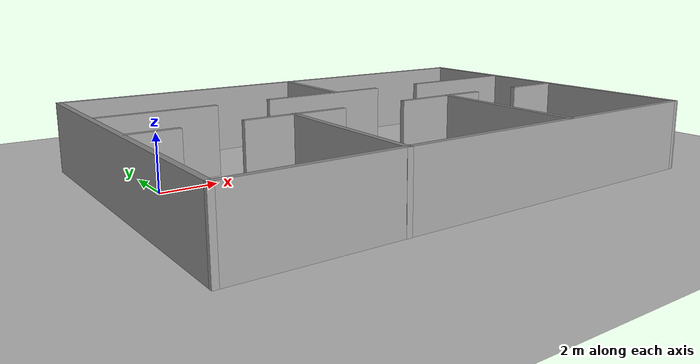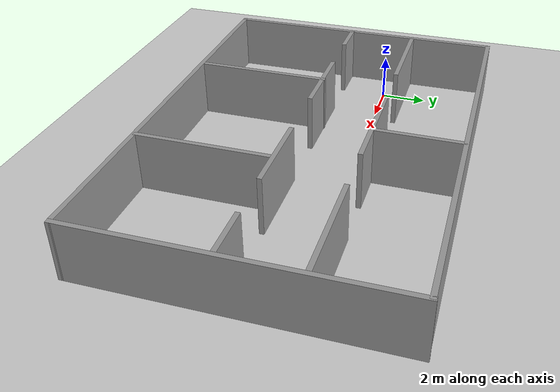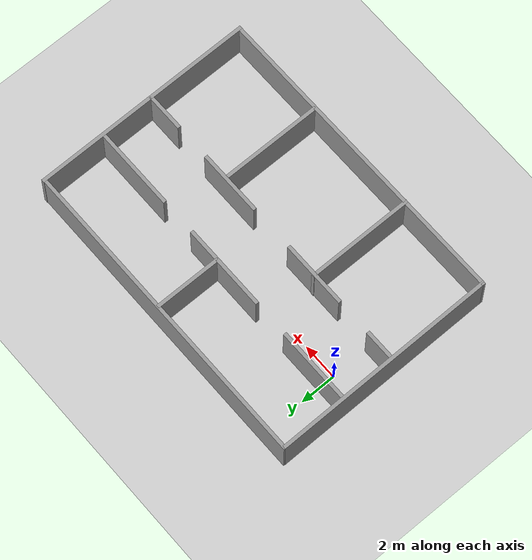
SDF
<sdf version="1.4">
 <world name="default">
  <light name="sun" type="directional">
   <pose>0 0 10 0 -0 0</pose>
   <diffuse>0.8 0.8 0.8 1</diffuse>
   <specular>0.2 0.2 0.2 1</specular>
   <attenuation>
    <range>1000</range>
    <constant>0.9</constant>
    <linear>0.01</linear>
    <quadratic>0.001</quadratic>
   </attenuation>
   <direction>-0.5 0.1 -0.9</direction>
  </light>
  <model name="ground_plane">
   <static>1</static>
   <link name="link">
    <collision name="collision">
     <geometry><plane><normal>0 0 1</normal><size>100 100</size></plane></geometry>
     <surface><friction><ode><mu>100</mu><mu2>50</mu2></ode></friction></surface>
    </collision>
    <visual name="visual">
     <cast_shadows>0</cast_shadows>
     <geometry><plane><normal>0 0 1</normal><size>100 100</size></plane></geometry>
     <material>
      <script><uri>file://media/materials/scripts/gazebo.material</uri><name>Gazebo/Grey</name></script>
     </material>
    </visual>
    <velocity_decay><linear>0</linear><angular>0</angular></velocity_decay>
   </link>
  </model>
  <physics type="ode">
   <max_step_size>0.001</max_step_size>
   <real_time_factor>1</real_time_factor>
   <real_time_update_rate>1000</real_time_update_rate>
   <gravity>0 0 -9.8</gravity>
  </physics>
  <scene><ambient>0.4 0.4 0.4 1</ambient><background>0.7 0.7 0.7 1</background><shadows>1</shadows></scene>
  <spherical_coordinates>
   <surface_model>EARTH_WGS84</surface_model>
   <latitude_deg>0</latitude_deg>
   <longitude_deg>0</longitude_deg>
   <elevation>0</elevation>
   <heading_deg>0</heading_deg>
  </spherical_coordinates>
  <model name="newExpWorld">
   <link name="Wall_0">
    <collision name="Wall_0_Collision">
     <geometry><box><size>17.9624 0.2 2.5</size></box></geometry>
     <pose>0 0 1.25 0 -0 0</pose>
    </collision>
    <visual name="Wall_0_Visual">
     <pose>0 0 1.25 0 -0 0</pose>
     <geometry><box><size>17.9624 0.2 2.5</size></box></geometry>
     <material>
      <script><uri>file://media/materials/scripts/gazebo.material</uri><name>Gazebo/Grey</name></script>
     </material>
    </visual>
    <velocity_decay><linear>0</linear><angular>0</angular></velocity_decay>
    <pose>5.66666 -0.780364 0 0 -0 0</pose>
   </link>
   <link name="Wall_10">
    <collision name="Wall_10_Collision">
     <geometry><box><size>6.0159 0.2 2.5</size></box></geometry>
     <pose>0 0 1.25 0 -0 0</pose>
    </collision>
    <visual name="Wall_10_Visual">
     <pose>0 0 1.25 0 -0 0</pose>
     <geometry><box><size>6.0159 0.2 2.5</size></box></geometry>
     <material>
      <script><uri>file://media/materials/scripts/gazebo.material</uri><name>Gazebo/Grey</name></script>
     </material>
    </visual>
    <velocity_decay><linear>0</linear><angular>0</angular></velocity_decay>
    <pose>2.3959 -10.4028 0 0 0 -1.5708</pose>
   </link>
   <link name="Wall_12">
    <collision name="Wall_12_Collision">
     <geometry><box><size>5.86281 0.2 2.5</size></box></geometry>
     <pose>0 0 1.25 0 -0 0</pose>
    </collision>
    <visual name="Wall_12_Visual">
     <pose>0 0 1.25 0 -0 0</pose>
     <geometry><box><size>5.86281 0.2 2.5</size></box></geometry>
     <material>
      <script><uri>file://media/materials/scripts/gazebo.material</uri><name>Gazebo/Grey</name></script>
     </material>
    </visual>
    <velocity_decay><linear>0</linear><angular>0</angular></velocity_decay>
    <pose>8.99214 -10.3549 0 0 0 -1.5708</pose>
   </link>
   <link name="Wall_14">
    <collision name="Wall_14_Collision">
     <geometry><box><size>3.76531 0.2 2.5</size></box></geometry>
     <pose>0 0 1.25 0 -0 0</pose>
    </collision>
    <visual name="Wall_14_Visual">
     <pose>0 0 1.25 0 -0 0</pose>
     <geometry><box><size>3.76531 0.2 2.5</size></box></geometry>
     <material>
      <script><uri>file://media/materials/scripts/gazebo.material</uri><name>Gazebo/Grey</name></script>
     </material>
    </visual>
    <velocity_decay><linear>0</linear><angular>0</angular></velocity_decay>
    <pose>6.00516 -2.62941 0 0 0 -1.5708</pose>
   </link>
   <link name="Wall_2">
    <collision name="Wall_2_Collision">
     <geometry><box><size>12.6688 0.2 2.5</size></box></geometry>
     <pose>0 0 1.25 0 -0 0</pose>
    </collision>
    <visual name="Wall_2_Visual">
     <pose>0 0 1.25 0 -0 0</pose>
     <geometry><box><size>12.6688 0.2 2.5</size></box></geometry>
     <material>
      <script><uri>file://media/materials/scripts/gazebo.material</uri><name>Gazebo/Grey</name></script>
     </material>
    </visual>
    <velocity_decay><linear>0</linear><angular>0</angular></velocity_decay>
    <pose>14.6461 -6.99361 0 0 0 -1.56423</pose>
   </link>
   <link name="Wall_3">
    <collision name="Wall_3_Collision">
     <geometry><box><size>18.0341 0.2 2.5</size></box></geometry>
     <pose>0 0 1.25 0 -0 0</pose>
    </collision>
    <visual name="Wall_3_Visual">
     <pose>0 0 1.25 0 -0 0</pose>
     <geometry><box><size>18.0341 0.2 2.5</size></box></geometry>
     <material>
      <script><uri>file://media/materials/scripts/gazebo.material</uri><name>Gazebo/Grey</name></script>
     </material>
    </visual>
    <velocity_decay><linear>0</linear><angular>0</angular></velocity_decay>
    <pose>5.77011 -13.2803 0 0 0 -3.13571</pose>
   </link>
   <link name="Wall_4">
    <collision name="Wall_4_Collision">
     <geometry><box><size>12.6779 0.2 2.5</size></box></geometry>
     <pose>0 0 1.25 0 -0 0</pose>
    </collision>
    <visual name="Wall_4_Visual">
     <pose>0 0 1.25 0 -0 0</pose>
     <geometry><box><size>12.6779 0.2 2.5</size></box></geometry>
     <material>
      <script><uri>file://media/materials/scripts/gazebo.material</uri><name>Gazebo/Grey</name></script>
     </material>
    </visual>
    <velocity_decay><linear>0</linear><angular>0</angular></velocity_decay>
    <pose>-3.1877 -7.094 0 0 -0 1.57736</pose>
   </link>
   <link name="Wall_6">
    <pose>5.72513 -7.52349 0 0 -0 0</pose>
    <visual name="Wall_6_Visual_0">
     <pose>-8.07323 0 1.25 0 -0 0</pose>
     <geometry><box><size>1.78871 0.2 2.5</size></box></geometry>
     <material>
      <script><uri>file://media/materials/scripts/gazebo.material</uri><name>Gazebo/Grey</name></script>
     </material>
    </visual>
    <collision name="Wall_6_Collision_0">
     <geometry><box><size>1.78871 0.2 2.5</size></box></geometry>
     <pose>-8.07323 0 1.25 0 -0 0</pose>
    </collision>
    <visual name="Wall_6_Visual_1">
     <pose>-3.29823 0 1.25 0 -0 0</pose>
     <geometry><box><size>3.76129 0.2 2.5</size></box></geometry>
     <material>
      <script><uri>file://media/materials/scripts/gazebo.material</uri><name>Gazebo/Grey</name></script>
     </material>
    </visual>
    <collision name="Wall_6_Collision_1">
     <geometry><box><size>3.76129 0.2 2.5</size></box></geometry>
     <pose>-3.29823 0 1.25 0 -0 0</pose>
    </collision>
    <visual name="Wall_6_Visual_2">
     <pose>2.92728 0 1.25 0 -0 0</pose>
     <geometry><box><size>3.68972 0.2 2.5</size></box></geometry>
     <material>
      <script><uri>file://media/materials/scripts/gazebo.material</uri><name>Gazebo/Grey</name></script>
     </material>
    </visual>
    <collision name="Wall_6_Collision_2">
     <geometry><box><size>3.68972 0.2 2.5</size></box></geometry>
     <pose>2.92728 0 1.25 0 -0 0</pose>
    </collision>
    <visual name="Wall_6_Visual_3">
     <pose>7.86986 0 1.25 0 -0 0</pose>
     <geometry><box><size>2.19544 0.2 2.5</size></box></geometry>
     <material>
      <script><uri>file://media/materials/scripts/gazebo.material</uri><name>Gazebo/Grey</name></script>
     </material>
    </visual>
    <collision name="Wall_6_Collision_3">
     <geometry><box><size>2.19544 0.2 2.5</size></box></geometry>
     <pose>7.86986 0 1.25 0 -0 0</pose>
    </collision>
    <velocity_decay><linear>0</linear><angular>0</angular></velocity_decay>
   </link>
   <link name="Wall_8">
    <pose>5.69402 -4.47429 0 0 -0 0</pose>
    <visual name="Wall_8_Visual_0">
     <pose>-6.78976 0 1.25 0 -0 0</pose>
     <geometry><box><size>4.29341 0.2 2.5</size></box></geometry>
     <material>
      <script><uri>file://media/materials/scripts/gazebo.material</uri><name>Gazebo/Grey</name></script>
     </material>
    </visual>
    <collision name="Wall_8_Collision_0">
     <geometry><box><size>4.29341 0.2 2.5</size></box></geometry>
     <pose>-6.78976 0 1.25 0 -0 0</pose>
    </collision>
    <visual name="Wall_8_Visual_1">
     <pose>-0.208034 0 1.25 0 -0 0</pose>
     <geometry><box><size>4.87004 0.2 2.5</size></box></geometry>
     <material>
      <script><uri>file://media/materials/scripts/gazebo.material</uri><name>Gazebo/Grey</name></script>
     </material>
    </visual>
    <collision name="Wall_8_Collision_1">
     <geometry><box><size>4.87004 0.2 2.5</size></box></geometry>
     <pose>-0.208034 0 1.25 0 -0 0</pose>
    </collision>
    <visual name="Wall_8_Visual_2">
     <pose>6.58173 0 1.25 0 -0 0</pose>
     <geometry><box><size>4.70948 0.2 2.5</size></box></geometry>
     <material>
      <script><uri>file://media/materials/scripts/gazebo.material</uri><name>Gazebo/Grey</name></script>
     </material>
    </visual>
    <collision name="Wall_8_Collision_2">
     <geometry><box><size>4.70948 0.2 2.5</size></box></geometry>
     <pose>6.58173 0 1.25 0 -0 0</pose>
    </collision>
    <velocity_decay><linear>0</linear><angular>0</angular></velocity_decay>
   </link>
   <static>1</static>
   <pose>1.47901 5.4241 0 0 -0 0</pose>
  </model>
 </world>
</sdf>
